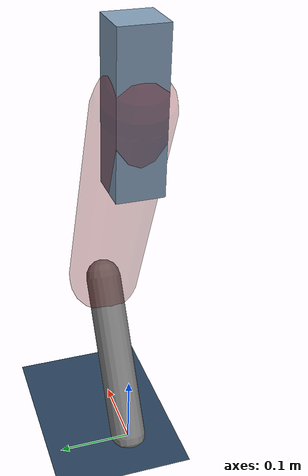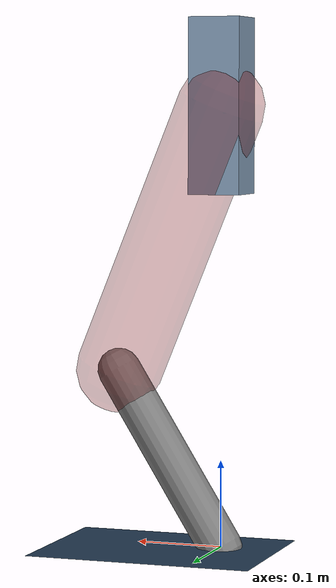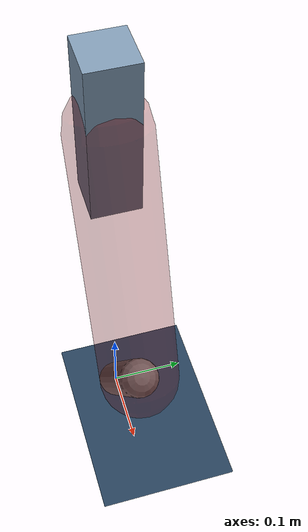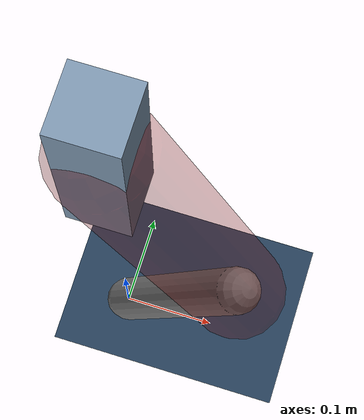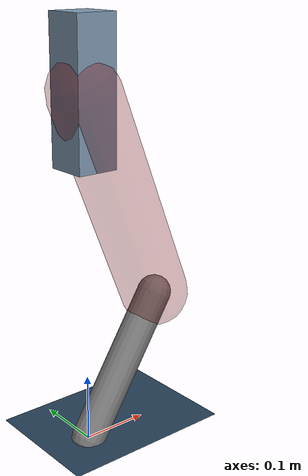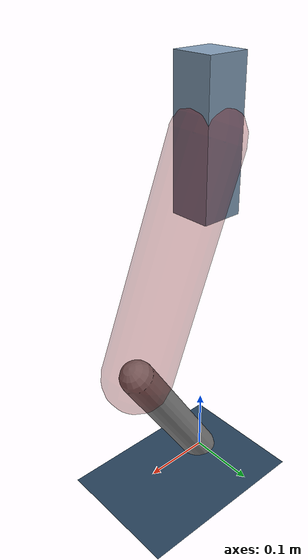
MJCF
<mujoco model="Hopper2D">
	<compiler inertiafromgeom="true" angle="radian" />
	<option timestep="0.001" integrator="implicit" cone="elliptic" solver="Newton" tolerance="1e-10" />

	<default>
		<geom contype="1" conaffinity="1" condim="3" friction="2 0.005 0.0001" solref="0.005 1" />
		<joint limited="true" damping="0.1" />
	</default>

	<asset>
		<texture name="skybox" type="skybox" builtin="gradient" rgb1=".4 .6 .8" rgb2="0 0 0" width="800" height="800" />
		<texture name="grid" type="2d" builtin="checker" rgb1=".1 .2 .3" rgb2=".2 .3 .4" width="300" height="300" mark="edge" markrgb=".2 .3 .4" />
		<material name="ground" texture="grid" texrepeat="1 1" texuniform="true" reflectance="0.1" />
		<material name="leg" rgba="0.5 0.6 0.7 1" />
	</asset>

	<worldbody>

		<geom name="floor" type="plane" size="5 5 0.25" material="ground" />

		<light directional="false" diffuse="0.8 0.8 0.8" specular="0.3 0.3 0.3" pos="0 0 2" dir="0 0 -1" />
		<light mode="targetbodycom" target="base" directional="false" diffuse="0.8 0.8 0.8" specular="0.3 0.3 0.3" pos="0 0 2" dir="0 0 -1" />

		<camera name="fixed" pos="0 -2 1" xyaxes="1 0 0 0 0 1" />
		<camera name="tracking" mode="trackcom" pos="0 -3 1" />

		<body name="root" pos="0 0 0.5066589331131839">
			<joint name="slide_x" type="slide" axis="1 0 0" range="-100 100" />
			<joint name="slide_z" type="slide" axis="0 0 1" range="0 10" />

			<body name="base" pos="0 0 0">
				<geom name="torso" type="box" size="0.03 0.03 0.1" mass="2.1399999999999997" material="leg" />

				<body name="link1" pos="0 0 0" euler="0 1.1838741709555696 0">
					<joint type="hinge" axis="0 -1 0" pos="0 0 0" name="hinge1" limited="true" range="-3.14 3.14" stiffness="0" damping="0.1" />
					<geom name="thigh" type="capsule" fromto="0 0 0 0.3296334808107888 0 0" size="0.05" rgba="0.5 0 0 0.3" mass="1.0698103981891298" />

					<body name="link2" pos="0.3296334808107888 0 0" euler="0 0.940193693577492 0">
						<joint type="hinge" axis="0 -1 0" pos="0 0 0" name="hinge2" limited="true" range="-3.14 3.14" stiffness="0" damping="0.1" />
						<geom name="shank" type="capsule" fromto="0 0 0 0.2367081575147654 0 0" size="0.025" mass="0.43156652601181233" />

					</body>
				</body>
			</body>
		</body>
	</worldbody>

	<actuator>
		<motor name="torque1" joint="hinge1" ctrlrange="-70.40549677493972 70.40549677493972" ctrllimited="true" gear="1" />
		<motor name="torque2" joint="hinge2" ctrlrange="-98.11329618413323 98.11329618413323" ctrllimited="true" gear="1" />
	</actuator>
</mujoco>
